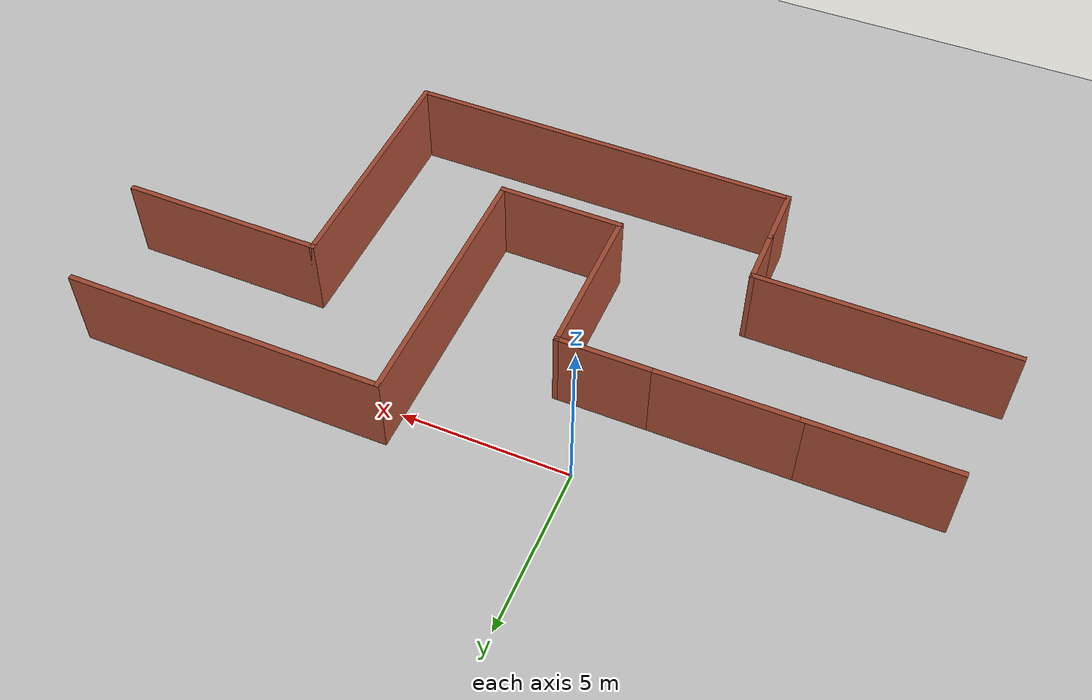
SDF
<sdf version="1.7">
 <world name="default">
  <light name="sun" type="directional">
   <pose>0 0 10 0 -0 0</pose>
   <diffuse>0.8 0.8 0.8 1</diffuse>
   <specular>0.2 0.2 0.2 1</specular>
   <attenuation>
    <range>1000</range>
    <constant>0.9</constant>
    <linear>0.01</linear>
    <quadratic>0.001</quadratic>
   </attenuation>
   <direction>-0.5 0.1 -0.9</direction>
   <spot><inner_angle>0</inner_angle><outer_angle>0</outer_angle><falloff>0</falloff></spot>
  </light>
  <model name="ground_plane">
   <static>1</static>
   <link name="link">
    <collision name="collision">
     <geometry><plane><normal>0 0 1</normal><size>100 100</size></plane></geometry>
     <surface>
      <contact><collide_bitmask>65535</collide_bitmask></contact>
      <friction><ode><mu>100</mu><mu2>50</mu2></ode></friction>
     </surface>
    </collision>
    <visual name="visual">
     <cast_shadows>0</cast_shadows>
     <geometry><plane><normal>0 0 1</normal><size>100 100</size></plane></geometry>
     <material>
      <script><uri>file://media/materials/scripts/gazebo.material</uri><name>Gazebo/Grey</name></script>
     </material>
    </visual>
   </link>
  </model>
  <gravity>0 0 -9.8</gravity>
  <magnetic_field>6e-06 2.3e-05 -4.2e-05</magnetic_field>
  <atmosphere type="adiabatic"/>
  <physics type="ode">
   <max_step_size>0.001</max_step_size>
   <real_time_factor>1</real_time_factor>
   <real_time_update_rate>1000</real_time_update_rate>
  </physics>
  <scene><ambient>0.4 0.4 0.4 1</ambient><background>0.7 0.7 0.7 1</background><shadows>1</shadows></scene>
  <spherical_coordinates>
   <surface_model>EARTH_WGS84</surface_model>
   <latitude_deg>0</latitude_deg>
   <longitude_deg>0</longitude_deg>
   <elevation>0</elevation>
   <heading_deg>0</heading_deg>
  </spherical_coordinates>
  <model name="rick2.world">
   <pose>2.41888 -4.385 0 0 -0 0</pose>
   <link name="Wall_12">
    <collision name="Wall_12_Collision">
     <geometry><box><size>4.25 0.15 2.5</size></box></geometry>
     <pose>0 0 1.25 0 -0 0</pose>
    </collision>
    <visual name="Wall_12_Visual">
     <pose>0 0 1.25 0 -0 0</pose>
     <geometry><box><size>4.25 0.15 2.5</size></box></geometry>
     <material>
      <script><uri>file://media/materials/scripts/gazebo.material</uri><name>Gazebo/Bricks</name></script>
      <ambient>1 1 1 1</ambient>
     </material>
     <meta><layer>0</layer></meta>
    </visual>
    <pose>-5.64888 2.115 0 0 -0 3.14159</pose>
   </link>
   <link name="Wall_33">
    <collision name="Wall_33_Collision">
     <geometry><box><size>2.75 0.15 2.5</size></box></geometry>
     <pose>0 0 1.25 0 -0 0</pose>
    </collision>
    <visual name="Wall_33_Visual">
     <pose>0 0 1.25 0 -0 0</pose>
     <geometry><box><size>2.75 0.15 2.5</size></box></geometry>
     <material>
      <script><uri>file://media/materials/scripts/gazebo.material</uri><name>Gazebo/Bricks</name></script>
      <ambient>1 1 1 1</ambient>
     </material>
     <meta><layer>0</layer></meta>
    </visual>
    <pose>-2.29888 2.115 0 0 -0 0</pose>
   </link>
   <link name="Wall_34">
    <collision name="Wall_34_Collision">
     <geometry><box><size>4.71004 0.15 2.5</size></box></geometry>
     <pose>0 0 1.25 0 -0 0</pose>
    </collision>
    <visual name="Wall_34_Visual">
     <pose>0 0 1.25 0 -0 0</pose>
     <geometry><box><size>4.71004 0.15 2.5</size></box></geometry>
     <material>
      <script><uri>file://media/materials/scripts/gazebo.material</uri><name>Gazebo/Bricks</name></script>
      <ambient>1 1 1 1</ambient>
     </material>
     <meta><layer>0</layer></meta>
    </visual>
    <pose>-0.99888 -0.164547 0 0 -0 -1.5708</pose>
   </link>
   <link name="Wall_35">
    <collision name="Wall_35_Collision">
     <geometry><box><size>3.75 0.15 2.5</size></box></geometry>
     <pose>0 0 1.25 0 -0 0</pose>
    </collision>
    <visual name="Wall_35_Visual">
     <pose>0 0 1.25 0 -0 0</pose>
     <geometry><box><size>3.75 0.15 2.5</size></box></geometry>
     <material>
      <script><uri>file://media/materials/scripts/gazebo.material</uri><name>Gazebo/Bricks</name></script>
      <ambient>1 1 1 1</ambient>
     </material>
     <meta><layer>0</layer></meta>
    </visual>
    <pose>0.801121 -2.44409 0 0 -0 0</pose>
   </link>
   <link name="Wall_36">
    <collision name="Wall_36_Collision">
     <geometry><box><size>7.95909 0.15 2.5</size></box></geometry>
     <pose>0 0 1.25 0 -0 0</pose>
    </collision>
    <visual name="Wall_36_Visual">
     <pose>0 0 1.25 0 -0 0</pose>
     <geometry><box><size>7.95909 0.15 2.5</size></box></geometry>
     <material>
      <script><uri>file://media/materials/scripts/gazebo.material</uri><name>Gazebo/Bricks</name></script>
      <ambient>1 1 1 1</ambient>
     </material>
     <meta><layer>0</layer></meta>
    </visual>
    <pose>2.60112 1.46045 0 0 -0 1.5708</pose>
   </link>
   <link name="Wall_37">
    <collision name="Wall_37_Collision">
     <geometry><box><size>9.5 0.15 2.5</size></box></geometry>
     <pose>0 0 1.25 0 -0 0</pose>
    </collision>
    <visual name="Wall_37_Visual">
     <pose>0 0 1.25 0 -0 0</pose>
     <geometry><box><size>9.5 0.15 2.5</size></box></geometry>
     <material>
      <script><uri>file://media/materials/scripts/gazebo.material</uri><name>Gazebo/Bricks</name></script>
      <ambient>1 1 1 1</ambient>
     </material>
     <meta><layer>0</layer></meta>
    </visual>
    <pose>7.27612 5.365 0 0 -0 0</pose>
   </link>
   <link name="Wall_41">
    <collision name="Wall_41_Collision">
     <geometry><box><size>1.83129 0.15 2.5</size></box></geometry>
     <pose>0 0 1.25 0 -0 0</pose>
    </collision>
    <visual name="Wall_41_Visual">
     <pose>0 0 1.25 0 -0 0</pose>
     <geometry><box><size>1.83129 0.15 2.5</size></box></geometry>
     <material>
      <script><uri>file://media/materials/scripts/gazebo.material</uri><name>Gazebo/Bricks</name></script>
      <ambient>1 1 1 1</ambient>
     </material>
     <meta><layer>0</layer></meta>
    </visual>
    <pose>-5.02112 -4.52436 0 0 -0 -1.5708</pose>
   </link>
   <link name="Wall_42">
    <collision name="Wall_42_Collision">
     <geometry><box><size>11.5992 0.15 2.5</size></box></geometry>
     <pose>0 0 1.25 0 -0 0</pose>
    </collision>
    <visual name="Wall_42_Visual">
     <pose>0 0 1.25 0 -0 0</pose>
     <geometry><box><size>11.5992 0.15 2.5</size></box></geometry>
     <material>
      <script><uri>file://media/materials/scripts/gazebo.material</uri><name>Gazebo/Bricks</name></script>
      <ambient>1 1 1 1</ambient>
     </material>
     <meta><layer>0</layer></meta>
    </visual>
    <pose>0.796524 -5.365 0 0 -0 0</pose>
   </link>
   <link name="Wall_43">
    <collision name="Wall_43_Collision">
     <geometry><box><size>7.25 0.15 2.5</size></box></geometry>
     <pose>0 0 1.25 0 -0 0</pose>
    </collision>
    <visual name="Wall_43_Visual">
     <pose>0 0 1.25 0 -0 0</pose>
     <geometry><box><size>7.25 0.15 2.5</size></box></geometry>
     <material>
      <script><uri>file://media/materials/scripts/gazebo.material</uri><name>Gazebo/Bricks</name></script>
      <ambient>1 1 1 1</ambient>
     </material>
     <meta><layer>0</layer></meta>
    </visual>
    <pose>6.52112 -1.815 0 0 -0 1.5708</pose>
   </link>
   <link name="Wall_44">
    <collision name="Wall_44_Collision">
     <geometry><box><size>6 0.15 2.5</size></box></geometry>
     <pose>0 0 1.25 0 -0 0</pose>
    </collision>
    <visual name="Wall_44_Visual">
     <pose>0 0 1.25 0 -0 0</pose>
     <geometry><box><size>6 0.15 2.5</size></box></geometry>
     <material>
      <script><uri>file://media/materials/scripts/gazebo.material</uri><name>Gazebo/Bricks</name></script>
      <ambient>1 1 1 1</ambient>
     </material>
     <meta><layer>0</layer></meta>
    </visual>
    <pose>9.44612 1.735 0 0 -0 0</pose>
   </link>
   <link name="Wall_46">
    <collision name="Wall_46_Collision">
     <geometry><box><size>1.75 0.15 2.5</size></box></geometry>
     <pose>0 0 1.25 0 -0 0</pose>
    </collision>
    <visual name="Wall_46_Visual">
     <pose>0 0 1.25 0 -0 0</pose>
     <geometry><box><size>1.75 0.15 2.5</size></box></geometry>
     <material>
      <script><uri>file://media/materials/scripts/gazebo.material</uri><name>Gazebo/Bricks</name></script>
      <ambient>1 1 1 1</ambient>
     </material>
     <meta><layer>0</layer></meta>
    </visual>
    <pose>-5.02112 -2.88372 0 0 -0 1.5708</pose>
   </link>
   <link name="Wall_47">
    <collision name="Wall_47_Collision">
     <geometry><box><size>7.5 0.15 2.5</size></box></geometry>
     <pose>0 0 1.25 0 -0 0</pose>
    </collision>
    <visual name="Wall_47_Visual">
     <pose>0 0 1.25 0 -0 0</pose>
     <geometry><box><size>7.5 0.15 2.5</size></box></geometry>
     <material>
      <script><uri>file://media/materials/scripts/gazebo.material</uri><name>Gazebo/Bricks</name></script>
      <ambient>1 1 1 1</ambient>
     </material>
     <meta><layer>0</layer></meta>
    </visual>
    <pose>-8.69612 -2.08372 0 0 -0 3.14159</pose>
   </link>
   <link name="Wall_49">
    <collision name="Wall_49_Collision">
     <geometry><box><size>4.25 0.15 2.5</size></box></geometry>
     <pose>0 0 1.25 0 -0 0</pose>
    </collision>
    <visual name="Wall_49_Visual">
     <pose>0 0 1.25 0 -0 0</pose>
     <geometry><box><size>4.25 0.15 2.5</size></box></geometry>
     <material>
      <script><uri>file://media/materials/scripts/gazebo.material</uri><name>Gazebo/Bricks</name></script>
      <ambient>1 1 1 1</ambient>
     </material>
     <meta><layer>0</layer></meta>
    </visual>
    <pose>-9.74888 2.115 0 0 -0 3.14159</pose>
   </link>
   <static>1</static>
  </model>
 </world>
</sdf>
